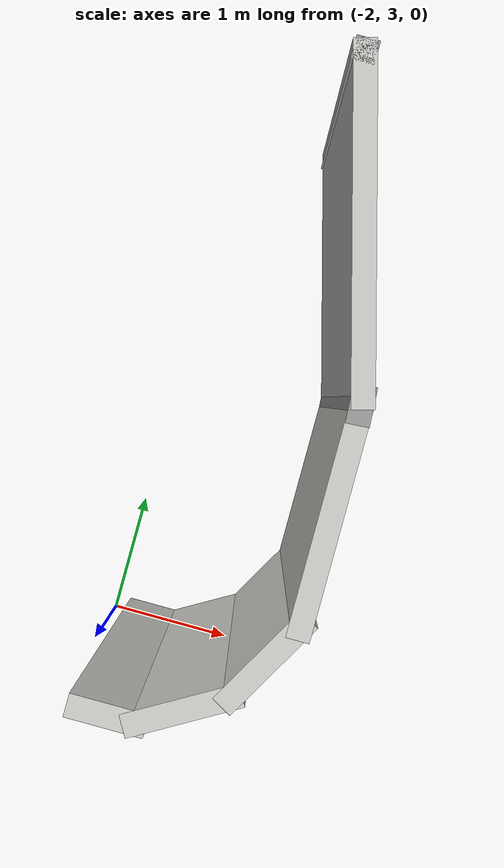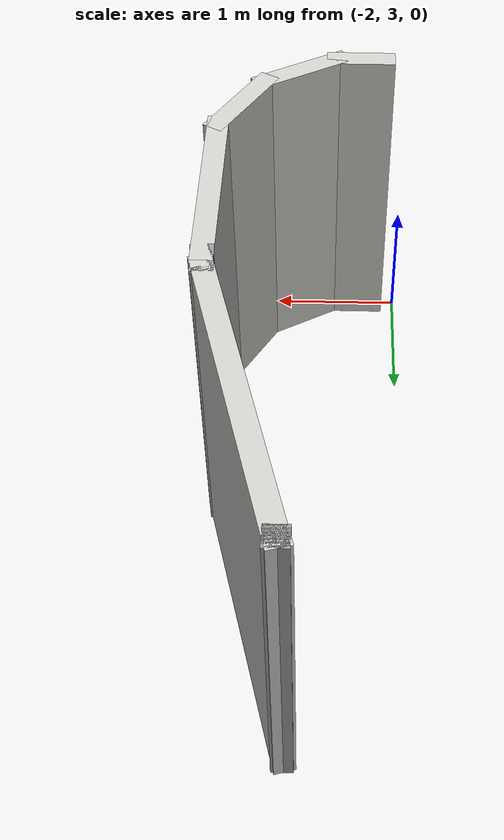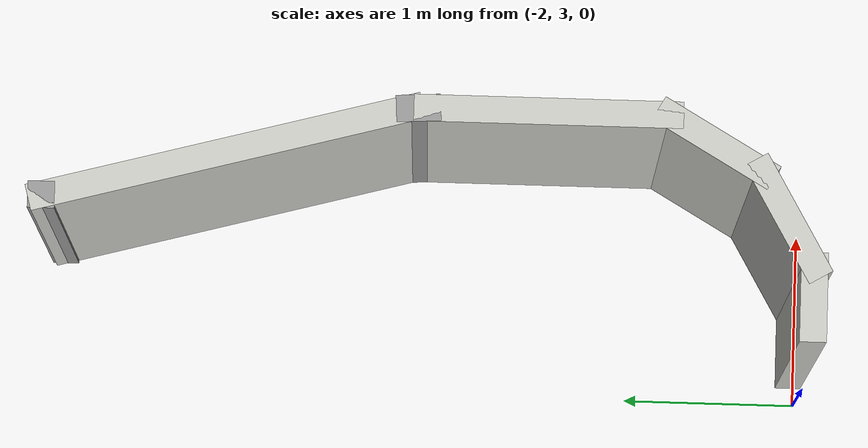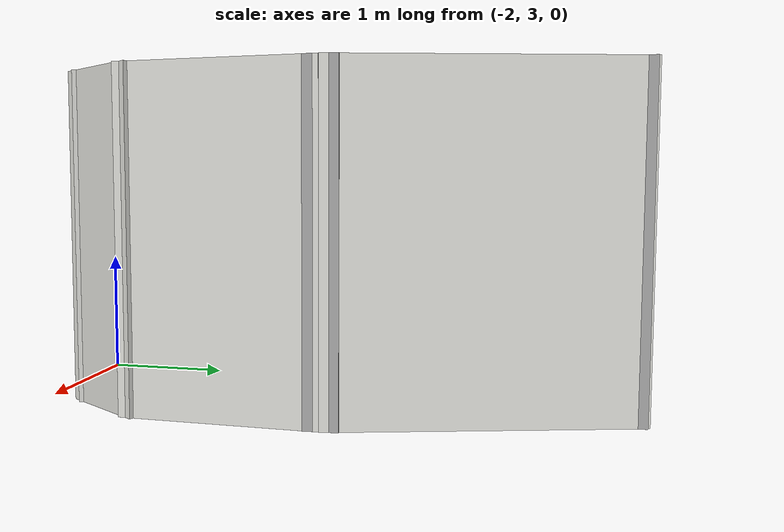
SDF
<?xml version='1.0'?>
<sdf version='1.7'>
  <model name='Kitchen_walls'>
    <pose>-0.947791 3.70944 0 0 -0 0</pose>
    <link name='Wall_0'>
      <collision name='Wall_0_Collision'>
        <geometry>
          <box>
            <size>2.25 0.15 2.5</size>
          </box>
        </geometry>
        <pose>0 0 1.25 0 -0 0</pose>
      </collision>
      <visual name='Wall_0_Visual'>
        <pose>0 0 1.25 0 -0 0</pose>
        <geometry>
          <box>
            <size>2.25 0.15 2.5</size>
          </box>
        </geometry>
        <material>
          <script>
            <uri>file://media/materials/scripts/gazebo.material</uri>
            <name>Gazebo/CeilingTiled</name>
          </script>
          <ambient>1 1 1 1</ambient>
        </material>
        <meta>
          <layer>0</layer>
        </meta>
      </visual>
      <pose>0.019145 2.60337 0 0 -0 1.8326</pose>
    </link>
    <link name='Wall_1'>
      <collision name='Wall_1_Collision'>
        <geometry>
          <box>
            <size>0.15 0.15 2.5</size>
          </box>
        </geometry>
        <pose>0 0 1.25 0 -0 0</pose>
      </collision>
      <visual name='Wall_1_Visual'>
        <pose>0 0 1.25 0 -0 0</pose>
        <geometry>
          <box>
            <size>0.15 0.15 2.5</size>
          </box>
        </geometry>
        <material>
          <script>
            <uri>file://media/materials/scripts/gazebo.material</uri>
            <name>Gazebo/Grey</name>
          </script>
          <ambient>1 1 1 1</ambient>
        </material>
        <meta>
          <layer>0</layer>
        </meta>
      </visual>
      <pose>-0.252615 3.61759 0 0 -0 0</pose>
    </link>
    <link name='Wall_3'>
      <collision name='Wall_3_Collision'>
        <geometry>
          <box>
            <size>0.24807 0.15 2.5</size>
          </box>
        </geometry>
        <pose>0 0 1.25 0 -0 0</pose>
      </collision>
      <visual name='Wall_3_Visual'>
        <pose>0 0 1.25 0 -0 0</pose>
        <geometry>
          <box>
            <size>0.24807 0.15 2.5</size>
          </box>
        </geometry>
        <material>
          <script>
            <uri>file://media/materials/scripts/gazebo.material</uri>
            <name>Gazebo/Grey</name>
          </script>
          <ambient>1 1 1 1</ambient>
        </material>
        <meta>
          <layer>0</layer>
        </meta>
      </visual>
      <pose>0.293865 1.5402 0 0 -0 -1.5104</pose>
    </link>
    <link name='Wall_4'>
      <collision name='Wall_4_Collision'>
        <geometry>
          <box>
            <size>1.5 0.15 2.5</size>
          </box>
        </geometry>
        <pose>0 0 1.25 0 -0 0</pose>
      </collision>
      <visual name='Wall_4_Visual'>
        <pose>0 0 1.25 0 -0 0</pose>
        <geometry>
          <box>
            <size>1.5 0.15 2.5</size>
          </box>
        </geometry>
        <material>
          <script>
            <uri>file://media/materials/scripts/gazebo.material</uri>
            <name>Gazebo/CeilingTiled</name>
          </script>
          <ambient>1 1 1 1</ambient>
        </material>
        <meta>
          <layer>0</layer>
        </meta>
      </visual>
      <pose>0.296824 0.816252 0 0 -0 -1.5708</pose>
    </link>
    <link name='Wall_5'>
      <collision name='Wall_5_Collision'>
        <geometry>
          <box>
            <size>0.75 0.15 2.5</size>
          </box>
        </geometry>
        <pose>0 0 1.25 0 -0 0</pose>
      </collision>
      <visual name='Wall_5_Visual'>
        <pose>0 0 1.25 0 -0 0</pose>
        <geometry>
          <box>
            <size>0.75 0.15 2.5</size>
          </box>
        </geometry>
        <material>
          <script>
            <uri>file://media/materials/scripts/gazebo.material</uri>
            <name>Gazebo/CeilingTiled</name>
          </script>
          <ambient>1 1 1 1</ambient>
        </material>
        <meta>
          <layer>0</layer>
        </meta>
      </visual>
      <pose>0.146824 -0.118556 0 0 -0 -2.0944</pose>
    </link>
    <link name='Wall_6'>
      <collision name='Wall_6_Collision'>
        <geometry>
          <box>
            <size>0.75 0.15 2.5</size>
          </box>
        </geometry>
        <pose>0 0 1.25 0 -0 0</pose>
      </collision>
      <visual name='Wall_6_Visual'>
        <pose>0 0 1.25 0 -0 0</pose>
        <geometry>
          <box>
            <size>0.75 0.15 2.5</size>
          </box>
        </geometry>
        <material>
          <script>
            <uri>file://media/materials/scripts/gazebo.material</uri>
            <name>Gazebo/CeilingTiled</name>
          </script>
          <ambient>1 1 1 1</ambient>
        </material>
        <meta>
          <layer>0</layer>
        </meta>
      </visual>
      <pose>-0.262983 -0.528364 0 0 -0 -2.61799</pose>
    </link>
    <link name='Wall_7'>
      <collision name='Wall_7_Collision'>
        <geometry>
          <box>
            <size>0.5 0.15 2.5</size>
          </box>
        </geometry>
        <pose>0 0 1.25 0 -0 0</pose>
      </collision>
      <visual name='Wall_7_Visual'>
        <pose>0 0 1.25 0 -0 0</pose>
        <geometry>
          <box>
            <size>0.5 0.15 2.5</size>
          </box>
        </geometry>
        <material>
          <script>
            <uri>file://media/materials/scripts/gazebo.material</uri>
            <name>Gazebo/CeilingTiled</name>
          </script>
          <ambient>1 1 1 1</ambient>
        </material>
        <meta>
          <layer>0</layer>
        </meta>
      </visual>
      <pose>-0.697791 -0.678364 0 0 -0 3.14159</pose>
    </link>
    <static>1</static>
  </model>
</sdf>
